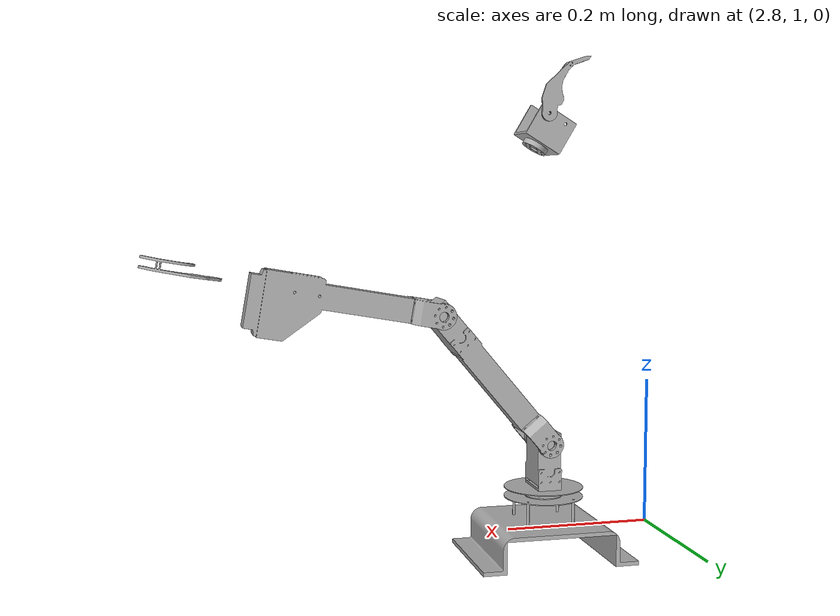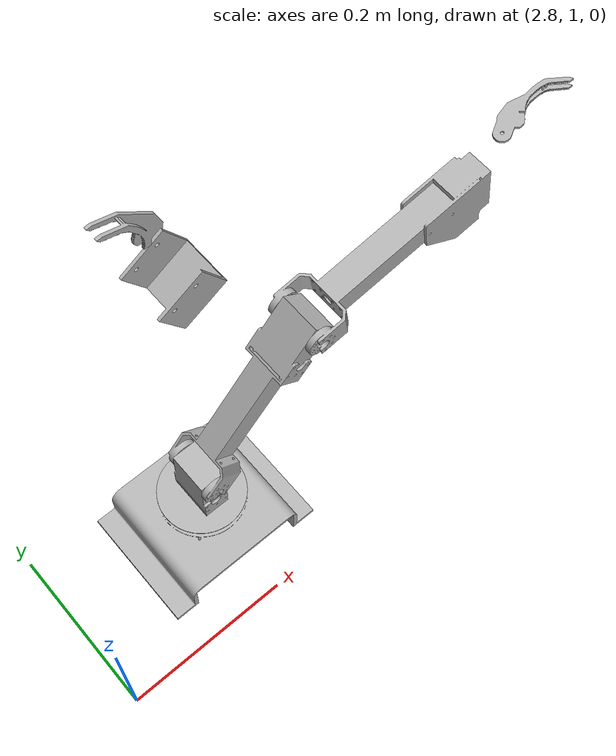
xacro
<?xml version="1.0"?>
<robot xmlns:xacro="http://www.ros.org/wiki/xacro" name="angle_excurate_arm_ver2">
    <xacro:arg name="initial_positions_file" default="initial_positions.yaml" />

    <!-- Import angle_excurate_arm_ver2 urdf file -->
    <xacro:include filename="$(find robot_description)/urdf/target.urdf" />

    <!-- Import control_xacro -->
    <xacro:include filename="angle_excurate_arm_ver2.ros2_control.xacro" />

    <xacro:angle_excurate_arm_ver2_ros2_control name="FakeSystem" initial_positions_file="$(arg initial_positions_file)"/>

</robot>

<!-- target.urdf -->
<!-- |    This document was autogenerated by xacro from urdf/angle_excurate_arm_ver2.xacro | -->
<!-- |    EDITING THIS FILE BY HAND IS NOT RECOMMENDED                                 | -->
<robot xmlns:xacro="http://www.ros.org/wiki/xacro" name="angle_excurate_arm_ver2">
  <material name="silver">
    <color rgba="0.700 0.700 0.700 1.000"/>
  </material>
  <transmission name="Revolute 1_tran">
    <type>transmission_interface/SimpleTransmission</type>
    <joint name="Revolute 1">
      <hardwareInterface>hardware_interface/EffortJointInterface</hardwareInterface>
    </joint>
    <actuator name="Revolute 1_actr">
      <hardwareInterface>hardware_interface/EffortJointInterface</hardwareInterface>
      <mechanicalReduction>1</mechanicalReduction>
    </actuator>
  </transmission>
  <transmission name="Revolute 2_tran">
    <type>transmission_interface/SimpleTransmission</type>
    <joint name="Revolute 2">
      <hardwareInterface>hardware_interface/EffortJointInterface</hardwareInterface>
    </joint>
    <actuator name="Revolute 2_actr">
      <hardwareInterface>hardware_interface/EffortJointInterface</hardwareInterface>
      <mechanicalReduction>1</mechanicalReduction>
    </actuator>
  </transmission>
  <transmission name="Revolute 3_tran">
    <type>transmission_interface/SimpleTransmission</type>
    <joint name="Revolute 3">
      <hardwareInterface>hardware_interface/EffortJointInterface</hardwareInterface>
    </joint>
    <actuator name="Revolute 3_actr">
      <hardwareInterface>hardware_interface/EffortJointInterface</hardwareInterface>
      <mechanicalReduction>1</mechanicalReduction>
    </actuator>
  </transmission>
  <transmission name="Revolute 4_tran">
    <type>transmission_interface/SimpleTransmission</type>
    <joint name="Revolute 4">
      <hardwareInterface>hardware_interface/EffortJointInterface</hardwareInterface>
    </joint>
    <actuator name="Revolute 4_actr">
      <hardwareInterface>hardware_interface/EffortJointInterface</hardwareInterface>
      <mechanicalReduction>1</mechanicalReduction>
    </actuator>
  </transmission>
  <transmission name="Revolute 5_tran">
    <type>transmission_interface/SimpleTransmission</type>
    <joint name="Revolute 5">
      <hardwareInterface>hardware_interface/EffortJointInterface</hardwareInterface>
    </joint>
    <actuator name="Revolute 5_actr">
      <hardwareInterface>hardware_interface/EffortJointInterface</hardwareInterface>
      <mechanicalReduction>1</mechanicalReduction>
    </actuator>
  </transmission>
  <transmission name="Revolute 6_tran">
    <type>transmission_interface/SimpleTransmission</type>
    <joint name="Revolute 6">
      <hardwareInterface>hardware_interface/EffortJointInterface</hardwareInterface>
    </joint>
    <actuator name="Revolute 6_actr">
      <hardwareInterface>hardware_interface/EffortJointInterface</hardwareInterface>
      <mechanicalReduction>1</mechanicalReduction>
    </actuator>
  </transmission>
  <gazebo>
    <plugin name="control" filename="libgazebo_ros_control.so"/>
  </gazebo>
  <gazebo reference="base_link">
    <material>Gazebo/Silver</material>
    <mu1>0.2</mu1>
    <mu2>0.2</mu2>
    <selfCollide>true</selfCollide>
    <gravity>true</gravity>
  </gazebo>
  <gazebo reference="base_link2_v2_1">
    <material>Gazebo/Silver</material>
    <mu1>0.2</mu1>
    <mu2>0.2</mu2>
    <selfCollide>true</selfCollide>
  </gazebo>
  <gazebo reference="link3_v1_1">
    <material>Gazebo/Silver</material>
    <mu1>0.2</mu1>
    <mu2>0.2</mu2>
    <selfCollide>true</selfCollide>
  </gazebo>
  <gazebo reference="link4_v1_1">
    <material>Gazebo/Silver</material>
    <mu1>0.2</mu1>
    <mu2>0.2</mu2>
    <selfCollide>true</selfCollide>
  </gazebo>
  <gazebo reference="robot_ver7_link_4_v1_1">
    <material>Gazebo/Silver</material>
    <mu1>0.2</mu1>
    <mu2>0.2</mu2>
    <selfCollide>true</selfCollide>
  </gazebo>
  <gazebo reference="robot_ver7_grap2_2_v1_1">
    <material>Gazebo/Silver</material>
    <mu1>0.2</mu1>
    <mu2>0.2</mu2>
    <selfCollide>true</selfCollide>
  </gazebo>
  <gazebo reference="robot_ver7_grap1_2_v1_1">
    <material>Gazebo/Silver</material>
    <mu1>0.2</mu1>
    <mu2>0.2</mu2>
    <selfCollide>true</selfCollide>
  </gazebo>
  <link name="base_link">
    <inertial>
      <origin xyz="2.9893753740438394 1.116432904659099 0.029849440895135016" rpy="0 0 0"/>
      <mass value="1.6067306789990348"/>
      <inertia ixx="0.003521" iyy="0.006468" izz="0.008802" ixy="0.0" iyz="-0.0" ixz="0.0"/>
    </inertial>
    <visual>
      <origin xyz="0 0 0" rpy="0 0 0"/>
      <geometry>
        <mesh filename="package://robot_description/meshes/base_link.stl" scale="0.001 0.001 0.001"/>
      </geometry>
      <material name="silver"/>
    </visual>
    <collision>
      <origin xyz="0 0 0" rpy="0 0 0"/>
      <geometry>
        <mesh filename="package://robot_description/meshes/base_link.stl" scale="0.001 0.001 0.001"/>
      </geometry>
    </collision>
  </link>
  <link name="base_link2_v2_1">
    <inertial>
      <origin xyz="3.7404378527838844e-07 7.073274099766991e-08 0.04484445545928446" rpy="0 0 0"/>
      <mass value="0.8724221516717809"/>
      <inertia ixx="0.000636" iyy="0.000529" izz="0.000308" ixy="-0.0" iyz="0.0" ixz="-0.0"/>
    </inertial>
    <visual>
      <origin xyz="-2.989375 -1.116433 -0.075907" rpy="0 0 0"/>
      <geometry>
        <mesh filename="package://robot_description/meshes/base_link2_v2_1.stl" scale="0.001 0.001 0.001"/>
      </geometry>
      <material name="silver"/>
    </visual>
    <collision>
      <origin xyz="-2.989375 -1.116433 -0.075907" rpy="0 0 0"/>
      <geometry>
        <mesh filename="package://robot_description/meshes/base_link2_v2_1.stl" scale="0.001 0.001 0.001"/>
      </geometry>
    </collision>
  </link>
  <link name="link3_v1_1">
    <inertial>
      <origin xyz="0.08484430230025541 -1.520309589331248e-08 0.10111258233522977" rpy="0 0 0"/>
      <mass value="1.7894494256516058"/>
      <inertia ixx="0.00475" iyy="0.007559" izz="0.003484" ixy="-0.0" iyz="-0.0" ixz="-0.003589"/>
    </inertial>
    <visual>
      <origin xyz="-2.989375 -1.116433 -0.146249" rpy="0 0 0"/>
      <geometry>
        <mesh filename="package://robot_description/meshes/link3_v1_1.stl" scale="0.001 0.001 0.001"/>
      </geometry>
      <material name="silver"/>
    </visual>
    <collision>
      <origin xyz="-2.989375 -1.116433 -0.146249" rpy="0 0 0"/>
      <geometry>
        <mesh filename="package://robot_description/meshes/link3_v1_1.stl" scale="0.001 0.001 0.001"/>
      </geometry>
    </collision>
  </link>
  <link name="link4_v1_1">
    <inertial>
      <origin xyz="0.1482264138500775 -9.6959044348921e-08 0.01783008469499825" rpy="0 0 0"/>
      <mass value="2.301167222256875"/>
      <inertia ixx="0.001028" iyy="0.010731" izz="0.010331" ixy="-0.0" iyz="0.0" ixz="-0.000548"/>
    </inertial>
    <visual>
      <origin xyz="-3.127152 -1.116433 -0.310444" rpy="0 0 0"/>
      <geometry>
        <mesh filename="package://robot_description/meshes/link4_v1_1.stl" scale="0.001 0.001 0.001"/>
      </geometry>
      <material name="silver"/>
    </visual>
    <collision>
      <origin xyz="-3.127152 -1.116433 -0.310444" rpy="0 0 0"/>
      <geometry>
        <mesh filename="package://robot_description/meshes/link4_v1_1.stl" scale="0.001 0.001 0.001"/>
      </geometry>
    </collision>
  </link>
  <link name="robot_ver7_link_4_v1_1">
    <inertial>
      <origin xyz="0.01789286974697868 -9.695904212847495e-08 0.0031552779596022984" rpy="0 0 0"/>
      <mass value="0.1836674229836172"/>
      <inertia ixx="9.9e-05" iyy="0.000103" izz="7.2e-05" ixy="0.0" iyz="0.0" ixz="5e-06"/>
    </inertial>
    <visual>
      <origin xyz="-3.357435 -1.116433 -0.35257" rpy="0 0 0"/>
      <geometry>
        <mesh filename="package://robot_description/meshes/robot_ver7_link_4_v1_1.stl" scale="0.001 0.001 0.001"/>
      </geometry>
      <material name="silver"/>
    </visual>
    <collision>
      <origin xyz="-3.357435 -1.116433 -0.35257" rpy="0 0 0"/>
      <geometry>
        <mesh filename="package://robot_description/meshes/robot_ver7_link_4_v1_1.stl" scale="0.001 0.001 0.001"/>
      </geometry>
    </collision>
  </link>
  <link name="robot_ver7_grap2_2_v1_1">
    <inertial>
      <origin xyz="0.03188502329176801 -0.005587167552119965 0.008275354159303638" rpy="0 0 0"/>
      <mass value="0.04062678364092949"/>
      <inertia ixx="4e-06" iyy="2.6e-05" izz="2.5e-05" ixy="-0.0" iyz="-0.0" ixz="-6e-06"/>
    </inertial>
    <visual>
      <origin xyz="-3.398994 -1.103933 -0.359898" rpy="0 0 0"/>
      <geometry>
        <mesh filename="package://robot_description/meshes/robot_ver7_grap2_2_v1_1.stl" scale="0.001 0.001 0.001"/>
      </geometry>
      <material name="silver"/>
    </visual>
    <collision>
      <origin xyz="-3.398994 -1.103933 -0.359898" rpy="0 0 0"/>
      <geometry>
        <mesh filename="package://robot_description/meshes/robot_ver7_grap2_2_v1_1.stl" scale="0.001 0.001 0.001"/>
      </geometry>
    </collision>
  </link>
  <link name="robot_ver7_grap1_2_v1_1">
    <inertial>
      <origin xyz="0.03188502329176801 0.005586973634027714 0.008275354159306136" rpy="0 0 0"/>
      <mass value="0.040626783640931655"/>
      <inertia ixx="4e-06" iyy="2.6e-05" izz="2.5e-05" ixy="0.0" iyz="0.0" ixz="-6e-06"/>
    </inertial>
    <visual>
      <origin xyz="-3.398994 -1.128933 -0.359898" rpy="0 0 0"/>
      <geometry>
        <mesh filename="package://robot_description/meshes/robot_ver7_grap1_2_v1_1.stl" scale="0.001 0.001 0.001"/>
      </geometry>
      <material name="silver"/>
    </visual>
    <collision>
      <origin xyz="-3.398994 -1.128933 -0.359898" rpy="0 0 0"/>
      <geometry>
        <mesh filename="package://robot_description/meshes/robot_ver7_grap1_2_v1_1.stl" scale="0.001 0.001 0.001"/>
      </geometry>
    </collision>
  </link>
  <joint name="Revolute 1" type="revolute">
    <origin xyz="2.989375 1.116433 0.075907" rpy="0 0 0"/>
    <parent link="base_link"/>
    <child link="base_link2_v2_1"/>
    <axis xyz="-0.0 -0.0 1.0"/>
    <limit upper="3.141593" lower="0.0" effort="100" velocity="100"/>
  </joint>
  <joint name="Revolute 2" type="revolute">
    <origin xyz="0.0 0.0 0.070342" rpy="0 0 0"/>
    <parent link="base_link2_v2_1"/>
    <child link="link3_v1_1"/>
    <axis xyz="-0.0 -1.0 -0.0"/>
    <limit upper="2.094395" lower="0.0" effort="100" velocity="100"/>
  </joint>
  <joint name="Revolute 3" type="revolute">
    <origin xyz="0.137777 0.0 0.164195" rpy="0 0 0"/>
    <parent link="link3_v1_1"/>
    <child link="link4_v1_1"/>
    <axis xyz="-0.0 -1.0 -0.0"/>
    <limit upper="2.617994" lower="0.0" effort="100" velocity="100"/>
  </joint>
  <joint name="Revolute 4" type="revolute">
    <origin xyz="0.230283 0.0 0.042126" rpy="0 0 0"/>
    <parent link="link4_v1_1"/>
    <child link="robot_ver7_link_4_v1_1"/>
    <axis xyz="0.984808 -0.0 0.173648"/>
    <limit upper="3.141593" lower="0.0" effort="100" velocity="100"/>
  </joint>
  <joint name="Revolute 5" type="revolute">
    <origin xyz="0.041559 -0.0125 0.007328" rpy="0 0 0"/>
    <parent link="robot_ver7_link_4_v1_1"/>
    <child link="robot_ver7_grap2_2_v1_1"/>
    <axis xyz="0.173648 0.0 -0.984808"/>
    <limit upper="1.22173" lower="0.0" effort="100" velocity="100"/>
  </joint>
  <joint name="Revolute 6" type="revolute">
    <origin xyz="0.041559 0.0125 0.007328" rpy="0 0 0"/>
    <parent link="robot_ver7_link_4_v1_1"/>
    <child link="robot_ver7_grap1_2_v1_1"/>
    <axis xyz="-0.173648 -0.0 0.984808"/>
    <limit upper="1.22173" lower="0.0" effort="100" velocity="100"/>
    <mimic joint="Revolute 5" multiplier="-1.0"/>
    <!-- multiplier設定為-1.0表示反向模仿 -->
  </joint>
</robot>
